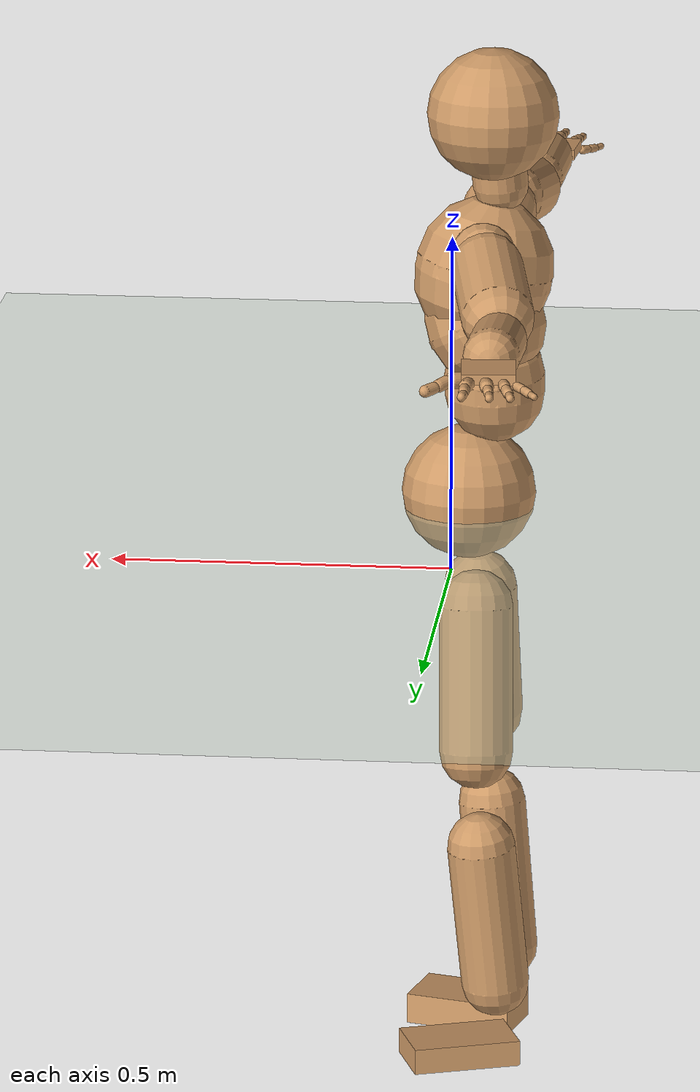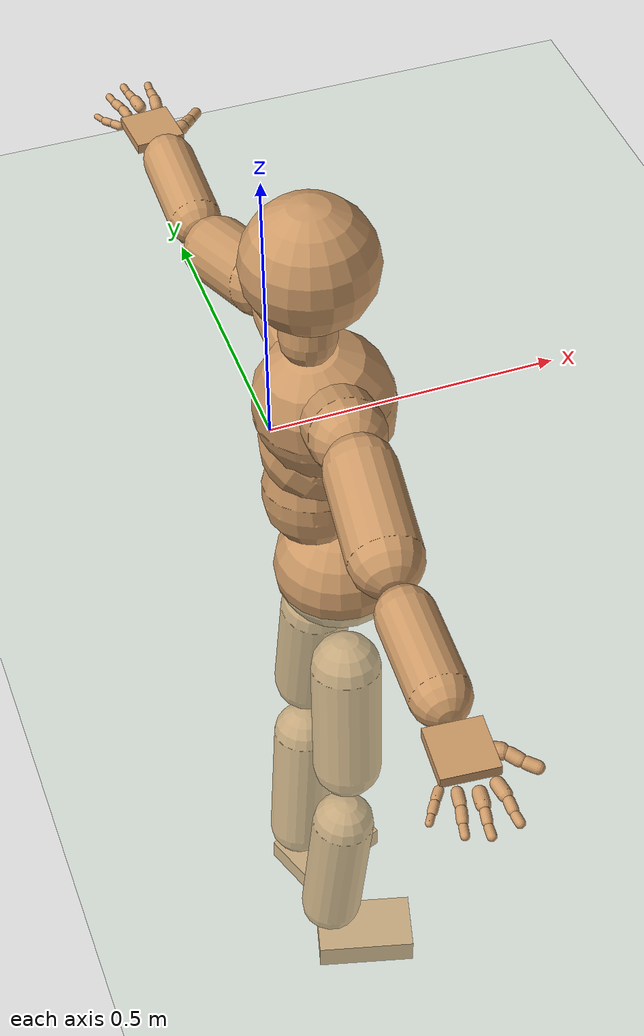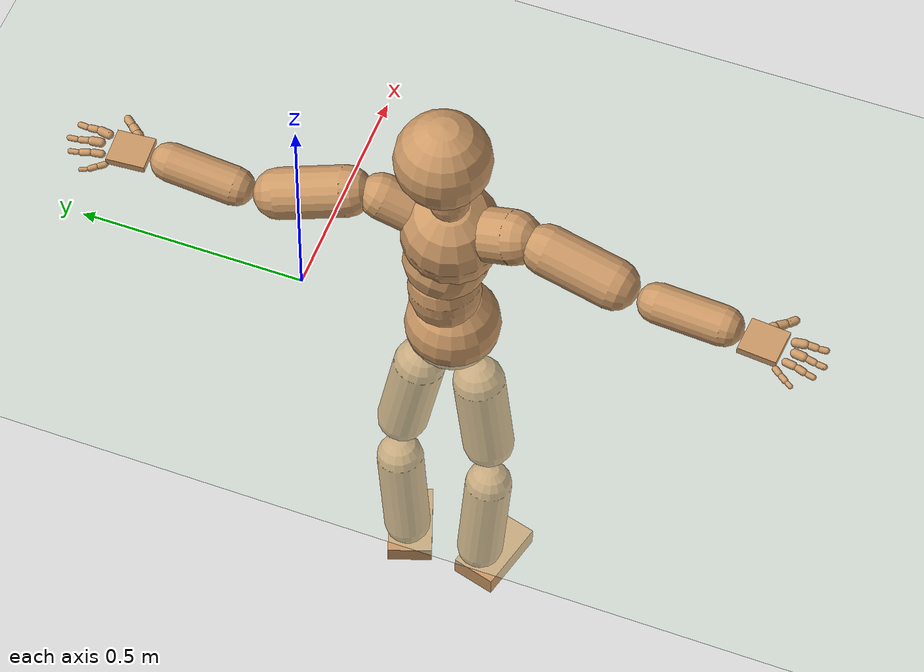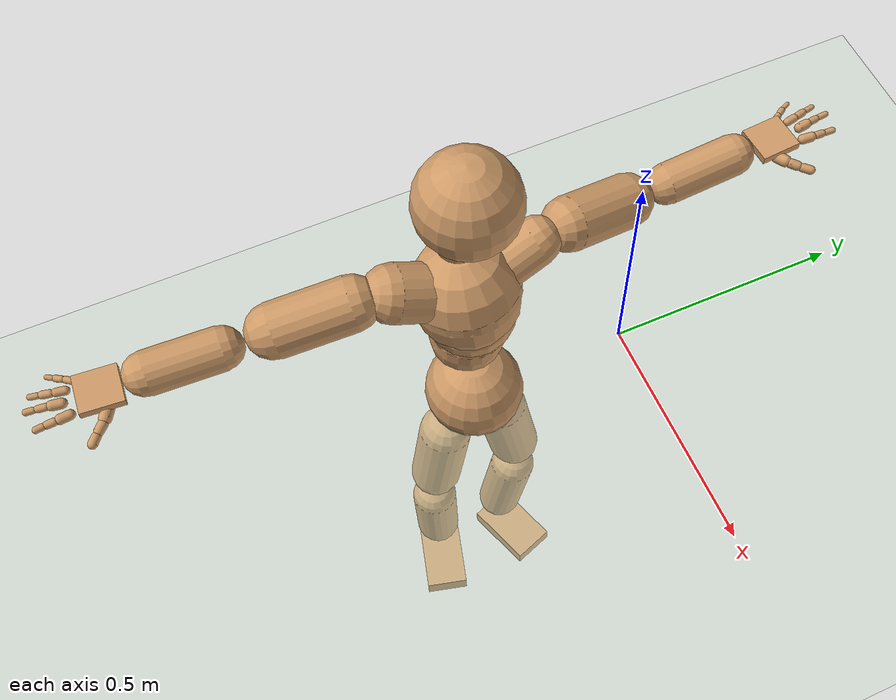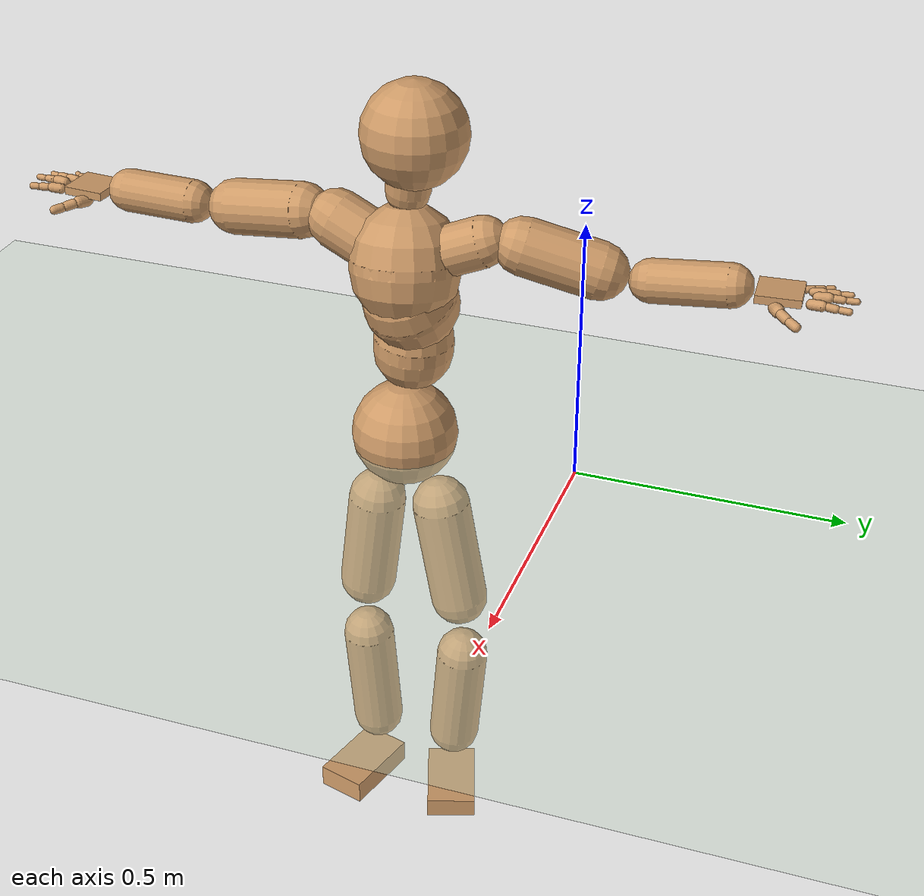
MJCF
<mujoco model="humanoid">
  <compiler coordinate="local" angle="radian"/>
  <default>
    <joint damping="0.0" armature="0.01" stiffness="0.0" limited="true"/>
    <geom conaffinity="1" condim="3" contype="7" margin="0.001" rgba="0.8 0.6 .4 1"/>
  </default>
  <asset>
    <texture type="skybox" builtin="gradient" rgb1=".4 .5 .6" rgb2="0 0 0" width="100" height="100"/>
    <texture builtin="flat" height="1278" mark="cross" markrgb="1 1 1" name="texgeom" random="0.01" rgb1="0.8 0.6 0.4" rgb2="0.8 0.6 0.4" type="cube" width="127"/>
    <texture builtin="checker" height="100" name="texplane" rgb1="0 0 0" rgb2="0.8 0.8 0.8" type="2d" width="100"/>
    <material name="MatPlane" reflectance="0.5" shininess="1" specular="1" texrepeat="60 60" texture="texplane"/>
    <material name="geom" texture="texgeom" texuniform="true"/>
  </asset>
  <worldbody>
    <light cutoff="100" diffuse="1 1 1" dir="-0 0 -1.3" directional="true" exponent="1" pos="0 0 1.3" specular=".1 .1 .1"/>
    <geom conaffinity="1" condim="3" name="floor" pos="0 0 0" rgba="0.8 0.9 0.8 1" size="100 100 .2" type="plane" material="MatPlane"/>
    <body name="Pelvis" pos="0.0012 -0.3354 0.0224">
      <freejoint name="Pelvis"/>
      <geom type="sphere" contype="1" conaffinity="1" density="500" size="0.1015" pos="0.0000 0.0000 0.0000" name="Pelvis"/>
      <body name="L_Hip" pos="-0.0159 0.0541 -0.09">
        <joint name="L_Hip_x" type="hinge" pos="0 0 0" axis="1 0 0" stiffness="800" damping="80" armature="0.02" range="-180.0000 180.0000"/>
        <joint name="L_Hip_y" type="hinge" pos="0 0 0" axis="0 1 0" stiffness="800" damping="80" armature="0.02" range="-180.0000 180.0000"/>
        <joint name="L_Hip_z" type="hinge" pos="0 0 0" axis="0 0 1" stiffness="800" damping="80" armature="0.02" range="-180.0000 180.0000"/>
        <geom type="capsule" contype="1" conaffinity="1" density="500" fromto="-0.0014 0.0123 -0.0727 -0.0057 0.0493 -0.2907" size="0.0562" name="L_Hip"/>
        <body name="L_Knee" pos="-0.0071 0.0617 -0.3634">
          <joint name="L_Knee_x" type="hinge" pos="0 0 0" axis="1 0 0" stiffness="800" damping="80" armature="0.02" range="-180.0000 180.0000"/>
          <joint name="L_Knee_y" type="hinge" pos="0 0 0" axis="0 1 0" stiffness="800" damping="80" armature="0.02" range="-180.0000 180.0000"/>
          <joint name="L_Knee_z" type="hinge" pos="0 0 0" axis="0 0 1" stiffness="800" damping="80" armature="0.02" range="-180.0000 180.0000"/>
          <geom type="capsule" contype="1" conaffinity="1" density="500" fromto="-0.0071 -0.0083 -0.0761 -0.0283 -0.0331 -0.3043" size="0.0516" name="L_Knee"/>
          <body name="L_Ankle" pos="-0.0354 -0.0414 -0.3804">
            <joint name="L_Ankle_x" type="hinge" pos="0 0 0" axis="1 0 0" stiffness="800" damping="80" armature="0.02" range="-180.0000 180.0000"/>
            <joint name="L_Ankle_y" type="hinge" pos="0 0 0" axis="0 1 0" stiffness="800" damping="80" armature="0.02" range="-180.0000 180.0000"/>
            <joint name="L_Ankle_z" type="hinge" pos="0 0 0" axis="0 0 1" stiffness="800" damping="80" armature="0.02" range="-180.0000 180.0000"/>
            <geom type="box" contype="1" conaffinity="1" density="500" pos="0.0605 0.0212 -0.0272" size="0.0825 0.0496 0.0197" quat="0.9859 0.0000 0.0000 0.1675" name="L_Ankle"/>
            <body name="L_Toe" pos="0.121 0.0424 -0.0545">
              <joint name="L_Toe_x" type="hinge" pos="0 0 0" axis="1 0 0" stiffness="500" damping="50" armature="0.02" range="-180.0000 180.0000"/>
              <joint name="L_Toe_y" type="hinge" pos="0 0 0" axis="0 1 0" stiffness="500" damping="50" armature="0.02" range="-180.0000 180.0000"/>
              <joint name="L_Toe_z" type="hinge" pos="0 0 0" axis="0 0 1" stiffness="500" damping="50" armature="0.02" range="-180.0000 180.0000"/>
              <geom type="box" contype="1" conaffinity="1" density="500" pos="0.0000 0.0000 0.0283" size="0.001 0.0023 0.001" quat="0.9851 0.0000 0.0000 0.1722" name="L_Toe"/>
            </body>
          </body>
        </body>
      </body>
      <body name="R_Hip" pos="-0.01 -0.0553 -0.1006">
        <joint name="R_Hip_x" type="hinge" pos="0 0 0" axis="1 0 0" stiffness="800" damping="80" armature="0.02" range="-180.0000 180.0000"/>
        <joint name="R_Hip_y" type="hinge" pos="0 0 0" axis="0 1 0" stiffness="800" damping="80" armature="0.02" range="-180.0000 180.0000"/>
        <joint name="R_Hip_z" type="hinge" pos="0 0 0" axis="0 0 1" stiffness="800" damping="80" armature="0.02" range="-180.0000 180.0000"/>
        <geom type="capsule" contype="1" conaffinity="1" density="500" fromto="-0.0028 -0.0094 -0.0694 -0.0112 -0.0374 -0.2778" size="0.056" name="R_Hip"/>
        <body name="R_Knee" pos="-0.014 -0.0468 -0.3472">
          <joint name="R_Knee_x" type="hinge" pos="0 0 0" axis="1 0 0" stiffness="800" damping="80" armature="0.02" range="-180.0000 180.0000"/>
          <joint name="R_Knee_y" type="hinge" pos="0 0 0" axis="0 1 0" stiffness="800" damping="80" armature="0.02" range="-180.0000 180.0000"/>
          <joint name="R_Knee_z" type="hinge" pos="0 0 0" axis="0 0 1" stiffness="800" damping="80" armature="0.02" range="-180.0000 180.0000"/>
          <geom type="capsule" contype="1" conaffinity="1" density="500" fromto="-0.0069 0.0029 -0.0785 -0.0277 0.0115 -0.3140" size="0.0514" name="R_Knee"/>
          <body name="R_Ankle" pos="-0.0346 0.0144 -0.3925">
            <joint name="R_Ankle_x" type="hinge" pos="0 0 0" axis="1 0 0" stiffness="800" damping="80" armature="0.02" range="-180.0000 180.0000"/>
            <joint name="R_Ankle_y" type="hinge" pos="0 0 0" axis="0 1 0" stiffness="800" damping="80" armature="0.02" range="-180.0000 180.0000"/>
            <joint name="R_Ankle_z" type="hinge" pos="0 0 0" axis="0 0 1" stiffness="800" damping="80" armature="0.02" range="-180.0000 180.0000"/>
            <geom type="box" contype="1" conaffinity="1" density="500" pos="0.0638 -0.0172 -0.0268" size="0.0825 0.0496 0.0236" quat="0.9914 0.0000 0.0000 -0.1311" name="R_Ankle"/>
            <body name="R_Toe" pos="0.1276 -0.0344 -0.0535">
              <joint name="R_Toe_x" type="hinge" pos="0 0 0" axis="1 0 0" stiffness="500" damping="50" armature="0.02" range="-180.0000 180.0000"/>
              <joint name="R_Toe_y" type="hinge" pos="0 0 0" axis="0 1 0" stiffness="500" damping="50" armature="0.02" range="-180.0000 180.0000"/>
              <joint name="R_Toe_z" type="hinge" pos="0 0 0" axis="0 0 1" stiffness="500" damping="50" armature="0.02" range="-180.0000 180.0000"/>
              <geom type="box" contype="1" conaffinity="1" density="500" pos="0.0000 0.0000 0.0239" size="0.001 0.0023 0.001" quat="0.9925 0.0000 0.0000 -0.1220" name="R_Toe"/>
            </body>
          </body>
        </body>
      </body>
      <body name="Torso" pos="-0.0402 -0.0008 0.1024">
        <joint name="Torso_x" type="hinge" pos="0 0 0" axis="1 0 0" stiffness="1000" damping="100" armature="0.02" range="-180.0000 180.0000"/>
        <joint name="Torso_y" type="hinge" pos="0 0 0" axis="0 1 0" stiffness="1000" damping="100" armature="0.02" range="-180.0000 180.0000"/>
        <joint name="Torso_z" type="hinge" pos="0 0 0" axis="0 0 1" stiffness="1000" damping="100" armature="0.02" range="-180.0000 180.0000"/>
        <geom type="capsule" contype="1" conaffinity="1" density="500" fromto="0.0023 0.0072 0.0826 0.0015 0.0048 0.0551" size="0.0756" name="Torso"/>
        <body name="Spine" pos="0.0039 0.012 0.1377">
          <joint name="Spine_x" type="hinge" pos="0 0 0" axis="1 0 0" stiffness="1000" damping="100" armature="0.02" range="-180.0000 180.0000"/>
          <joint name="Spine_y" type="hinge" pos="0 0 0" axis="0 1 0" stiffness="1000" damping="100" armature="0.02" range="-180.0000 180.0000"/>
          <joint name="Spine_z" type="hinge" pos="0 0 0" axis="0 0 1" stiffness="1000" damping="100" armature="0.02" range="-180.0000 180.0000"/>
          <geom type="capsule" contype="1" conaffinity="1" density="500" fromto="0.0152 -0.0063 0.0311 0.0101 -0.0042 0.0207" size="0.0898" name="Spine"/>
          <body name="Chest" pos="0.0253 -0.0106 0.0519">
            <joint name="Chest_x" type="hinge" pos="0 0 0" axis="1 0 0" stiffness="1000" damping="100" armature="0.02" range="-180.0000 180.0000"/>
            <joint name="Chest_y" type="hinge" pos="0 0 0" axis="0 1 0" stiffness="1000" damping="100" armature="0.02" range="-180.0000 180.0000"/>
            <joint name="Chest_z" type="hinge" pos="0 0 0" axis="0 0 1" stiffness="1000" damping="100" armature="0.02" range="-180.0000 180.0000"/>
            <geom type="capsule" contype="1" conaffinity="1" density="500" fromto="-0.0117 -0.0031 0.0592 -0.0078 -0.0021 0.0395" size="0.1037" name="Chest"/>
            <body name="Neck" pos="-0.036 -0.01 0.1544">
              <joint name="Neck_x" type="hinge" pos="0 0 0" axis="1 0 0" stiffness="500" damping="50" armature="0.02" range="-180.0000 180.0000"/>
              <joint name="Neck_y" type="hinge" pos="0 0 0" axis="0 1 0" stiffness="500" damping="50" armature="0.02" range="-180.0000 180.0000"/>
              <joint name="Neck_z" type="hinge" pos="0 0 0" axis="0 0 1" stiffness="500" damping="50" armature="0.02" range="-180.0000 180.0000"/>
              <geom type="capsule" contype="1" conaffinity="1" density="500" fromto="0.0026 0.0044 0.0279 0.0105 0.0176 0.1116" size="0.0417" name="Neck"/>
              <body name="Head" pos="0.0131 0.022 0.1395">
                <joint name="Head_x" type="hinge" pos="0 0 0" axis="1 0 0" stiffness="500" damping="50" armature="0.02" range="-180.0000 180.0000"/>
                <joint name="Head_y" type="hinge" pos="0 0 0" axis="0 1 0" stiffness="500" damping="50" armature="0.02" range="-180.0000 180.0000"/>
                <joint name="Head_z" type="hinge" pos="0 0 0" axis="0 0 1" stiffness="500" damping="50" armature="0.02" range="-180.0000 180.0000"/>
                <geom type="sphere" contype="1" conaffinity="1" density="500" size="0.0986" pos="0.0000 0.0000 0.0000" name="Head"/>
              </body>
            </body>
            <body name="L_Thorax" pos="-0.0102 0.04 0.0703">
              <joint name="L_Thorax_x" type="hinge" pos="0 0 0" axis="1 0 0" stiffness="500" damping="50" armature="0.02" range="-180.0000 180.0000"/>
              <joint name="L_Thorax_y" type="hinge" pos="0 0 0" axis="0 1 0" stiffness="500" damping="50" armature="0.02" range="-180.0000 180.0000"/>
              <joint name="L_Thorax_z" type="hinge" pos="0 0 0" axis="0 0 1" stiffness="500" damping="50" armature="0.02" range="-180.0000 180.0000"/>
              <geom type="capsule" contype="1" conaffinity="1" density="500" fromto="-0.0023 0.0254 0.0103 -0.0094 0.1016 0.0410" size="0.0475" name="L_Thorax"/>
              <body name="L_Shoulder" pos="-0.0117 0.1269 0.0513">
                <joint name="L_Shoulder_x" type="hinge" pos="0 0 0" axis="1 0 0" stiffness="500" damping="50" armature="0.02" range="-180.0000 180.0000"/>
                <joint name="L_Shoulder_y" type="hinge" pos="0 0 0" axis="0 1 0" stiffness="500" damping="50" armature="0.02" range="-180.0000 180.0000"/>
                <joint name="L_Shoulder_z" type="hinge" pos="0 0 0" axis="0 0 1" stiffness="500" damping="50" armature="0.02" range="-180.0000 180.0000"/>
                <geom type="capsule" contype="1" conaffinity="1" density="500" fromto="-0.0087 0.0448 -0.0128 -0.0349 0.1793 -0.0512" size="0.0533" name="L_Shoulder"/>
                <body name="L_Elbow" pos="-0.0437 0.2241 -0.064">
                  <joint name="L_Elbow_x" type="hinge" pos="0 0 0" axis="1 0 0" stiffness="500" damping="50" armature="0.02" range="-720.0000 720.0000"/>
                  <joint name="L_Elbow_y" type="hinge" pos="0 0 0" axis="0 1 0" stiffness="500" damping="50" armature="0.02" range="-720.0000 720.0000"/>
                  <joint name="L_Elbow_z" type="hinge" pos="0 0 0" axis="0 0 1" stiffness="500" damping="50" armature="0.02" range="-720.0000 720.0000"/>
                  <geom type="capsule" contype="1" conaffinity="1" density="500" fromto="0.0001 0.0468 0.0048 0.0004 0.1872 0.0194" size="0.0405" name="L_Elbow"/>
                  <body name="L_Wrist" pos="0.0005 0.234 0.0242">
                    <joint name="L_Wrist_x" type="hinge" pos="0 0 0" axis="1 0 0" stiffness="300" damping="30" armature="0.02" range="-180.0000 180.0000"/>
                    <joint name="L_Wrist_y" type="hinge" pos="0 0 0" axis="0 1 0" stiffness="300" damping="30" armature="0.02" range="-180.0000 180.0000"/>
                    <joint name="L_Wrist_z" type="hinge" pos="0 0 0" axis="0 0 1" stiffness="300" damping="30" armature="0.02" range="-180.0000 180.0000"/>
                    <geom type="box" contype="1" conaffinity="1" density="500" pos="-0.0027 0.0378 -0.0050" size="0.0405 0.0384 0.0077" quat="0.7318 0.0000 0.0000 -0.6816" name="L_Wrist"/>
                    <body name="L_Index1" pos="0.0208 0.0896 -0.0068">
                      <joint name="L_Index1_x" type="hinge" pos="0 0 0" axis="1 0 0" stiffness="100" damping="10" armature="0.02" range="-180.0000 180.0000"/>
                      <joint name="L_Index1_y" type="hinge" pos="0 0 0" axis="0 1 0" stiffness="100" damping="10" armature="0.02" range="-180.0000 180.0000"/>
                      <joint name="L_Index1_z" type="hinge" pos="0 0 0" axis="0 0 1" stiffness="100" damping="10" armature="0.02" range="-180.0000 180.0000"/>
                      <geom type="capsule" contype="1" conaffinity="1" density="500" fromto="0.0007 0.0061 0.0003 0.0028 0.0243 0.0012" size="0.0095" name="L_Index1"/>
                      <body name="L_Index2" pos="0.0035 0.0304 0.0016">
                        <joint name="L_Index2_x" type="hinge" pos="0 0 0" axis="1 0 0" stiffness="100" damping="10" armature="0.02" range="-180.0000 180.0000"/>
                        <joint name="L_Index2_y" type="hinge" pos="0 0 0" axis="0 1 0" stiffness="100" damping="10" armature="0.02" range="-180.0000 180.0000"/>
                        <joint name="L_Index2_z" type="hinge" pos="0 0 0" axis="0 0 1" stiffness="100" damping="10" armature="0.02" range="-180.0000 180.0000"/>
                        <geom type="capsule" contype="1" conaffinity="1" density="500" fromto="-0.0001 0.0043 -0.0005 -0.0003 0.0172 -0.0019" size="0.0075" name="L_Index2"/>
                        <body name="L_Index3" pos="-0.0004 0.0215 -0.0024">
                          <joint name="L_Index3_x" type="hinge" pos="0 0 0" axis="1 0 0" stiffness="100" damping="10" armature="0.02" range="-180.0000 180.0000"/>
                          <joint name="L_Index3_y" type="hinge" pos="0 0 0" axis="0 1 0" stiffness="100" damping="10" armature="0.02" range="-180.0000 180.0000"/>
                          <joint name="L_Index3_z" type="hinge" pos="0 0 0" axis="0 0 1" stiffness="100" damping="10" armature="0.02" range="-180.0000 180.0000"/>
                          <geom type="capsule" contype="1" conaffinity="1" density="500" fromto="0.0003 0.0047 -0.0001 0.0013 0.0188 -0.0003" size="0.0063" name="L_Index3"/>
                        </body>
                      </body>
                    </body>
                    <body name="L_Middle1" pos="-0.0034 0.0968 -0.0044">
                      <joint name="L_Middle1_x" type="hinge" pos="0 0 0" axis="1 0 0" stiffness="100" damping="10" armature="0.02" range="-180.0000 180.0000"/>
                      <joint name="L_Middle1_y" type="hinge" pos="0 0 0" axis="0 1 0" stiffness="100" damping="10" armature="0.02" range="-180.0000 180.0000"/>
                      <joint name="L_Middle1_z" type="hinge" pos="0 0 0" axis="0 0 1" stiffness="100" damping="10" armature="0.02" range="-180.0000 180.0000"/>
                      <geom type="capsule" contype="1" conaffinity="1" density="500" fromto="-0.0009 0.0058 0.0001 -0.0035 0.0234 0.0004" size="0.0096" name="L_Middle1"/>
                      <body name="L_Middle2" pos="-0.0043 0.0292 0.0005">
                        <joint name="L_Middle2_x" type="hinge" pos="0 0 0" axis="1 0 0" stiffness="100" damping="10" armature="0.02" range="-180.0000 180.0000"/>
                        <joint name="L_Middle2_y" type="hinge" pos="0 0 0" axis="0 1 0" stiffness="100" damping="10" armature="0.02" range="-180.0000 180.0000"/>
                        <joint name="L_Middle2_z" type="hinge" pos="0 0 0" axis="0 0 1" stiffness="100" damping="10" armature="0.02" range="-180.0000 180.0000"/>
                        <geom type="capsule" contype="1" conaffinity="1" density="500" fromto="-0.0009 0.0044 -0.0005 -0.0034 0.0177 -0.0018" size="0.007" name="L_Middle2"/>
                        <body name="L_Middle3" pos="-0.0043 0.0222 -0.0023">
                          <joint name="L_Middle3_x" type="hinge" pos="0 0 0" axis="1 0 0" stiffness="100" damping="10" armature="0.02" range="-180.0000 180.0000"/>
                          <joint name="L_Middle3_y" type="hinge" pos="0 0 0" axis="0 1 0" stiffness="100" damping="10" armature="0.02" range="-180.0000 180.0000"/>
                          <joint name="L_Middle3_z" type="hinge" pos="0 0 0" axis="0 0 1" stiffness="100" damping="10" armature="0.02" range="-180.0000 180.0000"/>
                          <geom type="capsule" contype="1" conaffinity="1" density="500" fromto="-0.0005 0.0048 -0.0001 -0.0018 0.0193 -0.0002" size="0.006" name="L_Middle3"/>
                        </body>
                      </body>
                    </body>
                    <body name="L_Pinky1" pos="-0.0436 0.0734 -0.0135">
                      <joint name="L_Pinky1_x" type="hinge" pos="0 0 0" axis="1 0 0" stiffness="100" damping="10" armature="0.02" range="-180.0000 180.0000"/>
                      <joint name="L_Pinky1_y" type="hinge" pos="0 0 0" axis="0 1 0" stiffness="100" damping="10" armature="0.02" range="-180.0000 180.0000"/>
                      <joint name="L_Pinky1_z" type="hinge" pos="0 0 0" axis="0 0 1" stiffness="100" damping="10" armature="0.02" range="-180.0000 180.0000"/>
                      <geom type="capsule" contype="1" conaffinity="1" density="500" fromto="-0.0023 0.0031 -0.0003 -0.0094 0.0126 -0.0011" size="0.0067" name="L_Pinky1"/>
                      <body name="L_Pinky2" pos="-0.0117 0.0157 -0.0014">
                        <joint name="L_Pinky2_x" type="hinge" pos="0 0 0" axis="1 0 0" stiffness="100" damping="10" armature="0.02" range="-180.0000 180.0000"/>
                        <joint name="L_Pinky2_y" type="hinge" pos="0 0 0" axis="0 1 0" stiffness="100" damping="10" armature="0.02" range="-180.0000 180.0000"/>
                        <joint name="L_Pinky2_z" type="hinge" pos="0 0 0" axis="0 0 1" stiffness="100" damping="10" armature="0.02" range="-180.0000 180.0000"/>
                        <geom type="capsule" contype="1" conaffinity="1" density="500" fromto="-0.0021 0.0031 -0.0004 -0.0085 0.0124 -0.0015" size="0.0064" name="L_Pinky2"/>
                        <body name="L_Pinky3" pos="-0.0106 0.0154 -0.0018">
                          <joint name="L_Pinky3_x" type="hinge" pos="0 0 0" axis="1 0 0" stiffness="100" damping="10" armature="0.02" range="-180.0000 180.0000"/>
                          <joint name="L_Pinky3_y" type="hinge" pos="0 0 0" axis="0 1 0" stiffness="100" damping="10" armature="0.02" range="-180.0000 180.0000"/>
                          <joint name="L_Pinky3_z" type="hinge" pos="0 0 0" axis="0 0 1" stiffness="100" damping="10" armature="0.02" range="-180.0000 180.0000"/>
                          <geom type="capsule" contype="1" conaffinity="1" density="500" fromto="-0.0017 0.0035 0.0000 -0.0069 0.0140 0.0001" size="0.0047" name="L_Pinky3"/>
                        </body>
                      </body>
                    </body>
                    <body name="L_Ring1" pos="-0.0272 0.0857 -0.0077">
                      <joint name="L_Ring1_x" type="hinge" pos="0 0 0" axis="1 0 0" stiffness="100" damping="10" armature="0.02" range="-180.0000 180.0000"/>
                      <joint name="L_Ring1_y" type="hinge" pos="0 0 0" axis="0 1 0" stiffness="100" damping="10" armature="0.02" range="-180.0000 180.0000"/>
                      <joint name="L_Ring1_z" type="hinge" pos="0 0 0" axis="0 0 1" stiffness="100" damping="10" armature="0.02" range="-180.0000 180.0000"/>
                      <geom type="capsule" contype="1" conaffinity="1" density="500" fromto="-0.0010 0.0054 0.0001 -0.0039 0.0216 0.0004" size="0.008" name="L_Ring1"/>
                      <body name="L_Ring2" pos="-0.0049 0.027 0.0005">
                        <joint name="L_Ring2_x" type="hinge" pos="0 0 0" axis="1 0 0" stiffness="100" damping="10" armature="0.02" range="-180.0000 180.0000"/>
                        <joint name="L_Ring2_y" type="hinge" pos="0 0 0" axis="0 1 0" stiffness="100" damping="10" armature="0.02" range="-180.0000 180.0000"/>
                        <joint name="L_Ring2_z" type="hinge" pos="0 0 0" axis="0 0 1" stiffness="100" damping="10" armature="0.02" range="-180.0000 180.0000"/>
                        <geom type="capsule" contype="1" conaffinity="1" density="500" fromto="-0.0013 0.0044 -0.0005 -0.0051 0.0177 -0.0019" size="0.0075" name="L_Ring2"/>
                        <body name="L_Ring3" pos="-0.0064 0.0221 -0.0024">
                          <joint name="L_Ring3_x" type="hinge" pos="0 0 0" axis="1 0 0" stiffness="100" damping="10" armature="0.02" range="-180.0000 180.0000"/>
                          <joint name="L_Ring3_y" type="hinge" pos="0 0 0" axis="0 1 0" stiffness="100" damping="10" armature="0.02" range="-180.0000 180.0000"/>
                          <joint name="L_Ring3_z" type="hinge" pos="0 0 0" axis="0 0 1" stiffness="100" damping="10" armature="0.02" range="-180.0000 180.0000"/>
                          <geom type="capsule" contype="1" conaffinity="1" density="500" fromto="-0.0009 0.0048 -0.0001 -0.0035 0.0193 -0.0003" size="0.0057" name="L_Ring3"/>
                        </body>
                      </body>
                    </body>
                    <body name="L_Thumb1" pos="0.0266 0.033 -0.018">
                      <joint name="L_Thumb1_x" type="hinge" pos="0 0 0" axis="1 0 0" stiffness="100" damping="10" armature="0.02" range="-180.0000 180.0000"/>
                      <joint name="L_Thumb1_y" type="hinge" pos="0 0 0" axis="0 1 0" stiffness="100" damping="10" armature="0.02" range="-180.0000 180.0000"/>
                      <joint name="L_Thumb1_z" type="hinge" pos="0 0 0" axis="0 0 1" stiffness="100" damping="10" armature="0.02" range="-180.0000 180.0000"/>
                      <geom type="capsule" contype="1" conaffinity="1" density="500" fromto="0.0051 0.0029 0.0004 0.0203 0.0116 0.0014" size="0.0118" name="L_Thumb1"/>
                      <body name="L_Thumb2" pos="0.0254 0.0145 0.0018">
                        <joint name="L_Thumb2_x" type="hinge" pos="0 0 0" axis="1 0 0" stiffness="100" damping="10" armature="0.02" range="-180.0000 180.0000"/>
                        <joint name="L_Thumb2_y" type="hinge" pos="0 0 0" axis="0 1 0" stiffness="100" damping="10" armature="0.02" range="-180.0000 180.0000"/>
                        <joint name="L_Thumb2_z" type="hinge" pos="0 0 0" axis="0 0 1" stiffness="100" damping="10" armature="0.02" range="-180.0000 180.0000"/>
                        <geom type="capsule" contype="1" conaffinity="1" density="500" fromto="0.0032 0.0036 -0.0009 0.0127 0.0145 -0.0036" size="0.0094" name="L_Thumb2"/>
                        <body name="L_Thumb3" pos="0.0159 0.0181 -0.0045">
                          <joint name="L_Thumb3_x" type="hinge" pos="0 0 0" axis="1 0 0" stiffness="100" damping="10" armature="0.02" range="-180.0000 180.0000"/>
                          <joint name="L_Thumb3_y" type="hinge" pos="0 0 0" axis="0 1 0" stiffness="100" damping="10" armature="0.02" range="-180.0000 180.0000"/>
                          <joint name="L_Thumb3_z" type="hinge" pos="0 0 0" axis="0 0 1" stiffness="100" damping="10" armature="0.02" range="-180.0000 180.0000"/>
                          <geom type="capsule" contype="1" conaffinity="1" density="500" fromto="0.0036 0.0040 -0.0005 0.0143 0.0161 -0.0020" size="0.0087" name="L_Thumb3"/>
                        </body>
                      </body>
                    </body>
                  </body>
                </body>
              </body>
            </body>
            <body name="R_Thorax" pos="-0.0122 -0.0454 0.0712">
              <joint name="R_Thorax_x" type="hinge" pos="0 0 0" axis="1 0 0" stiffness="500" damping="50" armature="0.02" range="-180.0000 180.0000"/>
              <joint name="R_Thorax_y" type="hinge" pos="0 0 0" axis="0 1 0" stiffness="500" damping="50" armature="0.02" range="-180.0000 180.0000"/>
              <joint name="R_Thorax_z" type="hinge" pos="0 0 0" axis="0 0 1" stiffness="500" damping="50" armature="0.02" range="-180.0000 180.0000"/>
              <geom type="capsule" contype="1" conaffinity="1" density="500" fromto="-0.0026 -0.0233 0.0099 -0.0104 -0.0933 0.0396" size="0.0561" name="R_Thorax"/>
              <body name="R_Shoulder" pos="-0.0129 -0.1166 0.0494">
                <joint name="R_Shoulder_x" type="hinge" pos="0 0 0" axis="1 0 0" stiffness="500" damping="50" armature="0.02" range="-180.0000 180.0000"/>
                <joint name="R_Shoulder_y" type="hinge" pos="0 0 0" axis="0 1 0" stiffness="500" damping="50" armature="0.02" range="-180.0000 180.0000"/>
                <joint name="R_Shoulder_z" type="hinge" pos="0 0 0" axis="0 0 1" stiffness="500" damping="50" armature="0.02" range="-180.0000 180.0000"/>
                <geom type="capsule" contype="1" conaffinity="1" density="500" fromto="-0.0056 -0.0479 -0.0070 -0.0226 -0.1916 -0.0281" size="0.0526" name="R_Shoulder"/>
                <body name="R_Elbow" pos="-0.0282 -0.2395 -0.0351">
                  <joint name="R_Elbow_x" type="hinge" pos="0 0 0" axis="1 0 0" stiffness="500" damping="50" armature="0.02" range="-720.0000 720.0000"/>
                  <joint name="R_Elbow_y" type="hinge" pos="0 0 0" axis="0 1 0" stiffness="500" damping="50" armature="0.02" range="-720.0000 720.0000"/>
                  <joint name="R_Elbow_z" type="hinge" pos="0 0 0" axis="0 0 1" stiffness="500" damping="50" armature="0.02" range="-720.0000 720.0000"/>
                  <geom type="capsule" contype="1" conaffinity="1" density="500" fromto="-0.0021 -0.0455 -0.0000 -0.0086 -0.1822 -0.0002" size="0.0414" name="R_Elbow"/>
                  <body name="R_Wrist" pos="-0.0107 -0.2277 -0.0002">
                    <joint name="R_Wrist_x" type="hinge" pos="0 0 0" axis="1 0 0" stiffness="300" damping="30" armature="0.02" range="-180.0000 180.0000"/>
                    <joint name="R_Wrist_y" type="hinge" pos="0 0 0" axis="0 1 0" stiffness="300" damping="30" armature="0.02" range="-180.0000 180.0000"/>
                    <joint name="R_Wrist_z" type="hinge" pos="0 0 0" axis="0 0 1" stiffness="300" damping="30" armature="0.02" range="-180.0000 180.0000"/>
                    <geom type="box" contype="1" conaffinity="1" density="500" pos="-0.0032 -0.0377 -0.0069" size="0.0405 0.0391 0.0079" quat="0.7365 0.0000 0.0000 0.6764" name="R_Wrist"/>
                    <body name="R_Index1" pos="0.0197 -0.0893 -0.0105">
                      <joint name="R_Index1_x" type="hinge" pos="0 0 0" axis="1 0 0" stiffness="100" damping="10" armature="0.02" range="-180.0000 180.0000"/>
                      <joint name="R_Index1_y" type="hinge" pos="0 0 0" axis="0 1 0" stiffness="100" damping="10" armature="0.02" range="-180.0000 180.0000"/>
                      <joint name="R_Index1_z" type="hinge" pos="0 0 0" axis="0 0 1" stiffness="100" damping="10" armature="0.02" range="-180.0000 180.0000"/>
                      <geom type="capsule" contype="1" conaffinity="1" density="500" fromto="0.0007 -0.0061 0.0003 0.0028 -0.0243 0.0012" size="0.0095" name="R_Index1"/>
                      <body name="R_Index2" pos="0.0035 -0.0304 0.0016">
                        <joint name="R_Index2_x" type="hinge" pos="0 0 0" axis="1 0 0" stiffness="100" damping="10" armature="0.02" range="-180.0000 180.0000"/>
                        <joint name="R_Index2_y" type="hinge" pos="0 0 0" axis="0 1 0" stiffness="100" damping="10" armature="0.02" range="-180.0000 180.0000"/>
                        <joint name="R_Index2_z" type="hinge" pos="0 0 0" axis="0 0 1" stiffness="100" damping="10" armature="0.02" range="-180.0000 180.0000"/>
                        <geom type="capsule" contype="1" conaffinity="1" density="500" fromto="-0.0001 -0.0043 -0.0005 -0.0003 -0.0172 -0.0019" size="0.0075" name="R_Index2"/>
                        <body name="R_Index3" pos="-0.0004 -0.0215 -0.0024">
                          <joint name="R_Index3_x" type="hinge" pos="0 0 0" axis="1 0 0" stiffness="100" damping="10" armature="0.02" range="-180.0000 180.0000"/>
                          <joint name="R_Index3_y" type="hinge" pos="0 0 0" axis="0 1 0" stiffness="100" damping="10" armature="0.02" range="-180.0000 180.0000"/>
                          <joint name="R_Index3_z" type="hinge" pos="0 0 0" axis="0 0 1" stiffness="100" damping="10" armature="0.02" range="-180.0000 180.0000"/>
                          <geom type="capsule" contype="1" conaffinity="1" density="500" fromto="0.0003 -0.0039 -0.0001 0.0013 -0.0156 -0.0003" size="0.0066" name="R_Index3"/>
                        </body>
                      </body>
                    </body>
                    <body name="R_Middle1" pos="-0.0045 -0.0964 -0.0081">
                      <joint name="R_Middle1_x" type="hinge" pos="0 0 0" axis="1 0 0" stiffness="100" damping="10" armature="0.02" range="-180.0000 180.0000"/>
                      <joint name="R_Middle1_y" type="hinge" pos="0 0 0" axis="0 1 0" stiffness="100" damping="10" armature="0.02" range="-180.0000 180.0000"/>
                      <joint name="R_Middle1_z" type="hinge" pos="0 0 0" axis="0 0 1" stiffness="100" damping="10" armature="0.02" range="-180.0000 180.0000"/>
                      <geom type="capsule" contype="1" conaffinity="1" density="500" fromto="-0.0009 -0.0058 0.0001 -0.0035 -0.0234 0.0004" size="0.0096" name="R_Middle1"/>
                      <body name="R_Middle2" pos="-0.0043 -0.0292 0.0005">
                        <joint name="R_Middle2_x" type="hinge" pos="0 0 0" axis="1 0 0" stiffness="100" damping="10" armature="0.02" range="-180.0000 180.0000"/>
                        <joint name="R_Middle2_y" type="hinge" pos="0 0 0" axis="0 1 0" stiffness="100" damping="10" armature="0.02" range="-180.0000 180.0000"/>
                        <joint name="R_Middle2_z" type="hinge" pos="0 0 0" axis="0 0 1" stiffness="100" damping="10" armature="0.02" range="-180.0000 180.0000"/>
                        <geom type="capsule" contype="1" conaffinity="1" density="500" fromto="-0.0009 -0.0044 -0.0005 -0.0034 -0.0177 -0.0018" size="0.007" name="R_Middle2"/>
                        <body name="R_Middle3" pos="-0.0043 -0.0222 -0.0023">
                          <joint name="R_Middle3_x" type="hinge" pos="0 0 0" axis="1 0 0" stiffness="100" damping="10" armature="0.02" range="-180.0000 180.0000"/>
                          <joint name="R_Middle3_y" type="hinge" pos="0 0 0" axis="0 1 0" stiffness="100" damping="10" armature="0.02" range="-180.0000 180.0000"/>
                          <joint name="R_Middle3_z" type="hinge" pos="0 0 0" axis="0 0 1" stiffness="100" damping="10" armature="0.02" range="-180.0000 180.0000"/>
                          <geom type="capsule" contype="1" conaffinity="1" density="500" fromto="-0.0005 -0.0040 -0.0001 -0.0018 -0.0161 -0.0002" size="0.0063" name="R_Middle3"/>
                        </body>
                      </body>
                    </body>
                    <body name="R_Pinky1" pos="-0.0447 -0.073 -0.0171">
                      <joint name="R_Pinky1_x" type="hinge" pos="0 0 0" axis="1 0 0" stiffness="100" damping="10" armature="0.02" range="-180.0000 180.0000"/>
                      <joint name="R_Pinky1_y" type="hinge" pos="0 0 0" axis="0 1 0" stiffness="100" damping="10" armature="0.02" range="-180.0000 180.0000"/>
                      <joint name="R_Pinky1_z" type="hinge" pos="0 0 0" axis="0 0 1" stiffness="100" damping="10" armature="0.02" range="-180.0000 180.0000"/>
                      <geom type="capsule" contype="1" conaffinity="1" density="500" fromto="-0.0023 -0.0031 -0.0003 -0.0094 -0.0126 -0.0011" size="0.0067" name="R_Pinky1"/>
                      <body name="R_Pinky2" pos="-0.0117 -0.0157 -0.0014">
                        <joint name="R_Pinky2_x" type="hinge" pos="0 0 0" axis="1 0 0" stiffness="100" damping="10" armature="0.02" range="-180.0000 180.0000"/>
                        <joint name="R_Pinky2_y" type="hinge" pos="0 0 0" axis="0 1 0" stiffness="100" damping="10" armature="0.02" range="-180.0000 180.0000"/>
                        <joint name="R_Pinky2_z" type="hinge" pos="0 0 0" axis="0 0 1" stiffness="100" damping="10" armature="0.02" range="-180.0000 180.0000"/>
                        <geom type="capsule" contype="1" conaffinity="1" density="500" fromto="-0.0021 -0.0031 -0.0004 -0.0085 -0.0124 -0.0015" size="0.0064" name="R_Pinky2"/>
                        <body name="R_Pinky3" pos="-0.0106 -0.0154 -0.0018">
                          <joint name="R_Pinky3_x" type="hinge" pos="0 0 0" axis="1 0 0" stiffness="100" damping="10" armature="0.02" range="-180.0000 180.0000"/>
                          <joint name="R_Pinky3_y" type="hinge" pos="0 0 0" axis="0 1 0" stiffness="100" damping="10" armature="0.02" range="-180.0000 180.0000"/>
                          <joint name="R_Pinky3_z" type="hinge" pos="0 0 0" axis="0 0 1" stiffness="100" damping="10" armature="0.02" range="-180.0000 180.0000"/>
                          <geom type="capsule" contype="1" conaffinity="1" density="500" fromto="-0.0017 -0.0027 0.0000 -0.0069 -0.0108 0.0001" size="0.005" name="R_Pinky3"/>
                        </body>
                      </body>
                    </body>
                    <body name="R_Ring1" pos="-0.0282 -0.0853 -0.0114">
                      <joint name="R_Ring1_x" type="hinge" pos="0 0 0" axis="1 0 0" stiffness="100" damping="10" armature="0.02" range="-180.0000 180.0000"/>
                      <joint name="R_Ring1_y" type="hinge" pos="0 0 0" axis="0 1 0" stiffness="100" damping="10" armature="0.02" range="-180.0000 180.0000"/>
                      <joint name="R_Ring1_z" type="hinge" pos="0 0 0" axis="0 0 1" stiffness="100" damping="10" armature="0.02" range="-180.0000 180.0000"/>
                      <geom type="capsule" contype="1" conaffinity="1" density="500" fromto="-0.0010 -0.0054 0.0001 -0.0039 -0.0216 0.0004" size="0.0081" name="R_Ring1"/>
                      <body name="R_Ring2" pos="-0.0049 -0.027 0.0005">
                        <joint name="R_Ring2_x" type="hinge" pos="0 0 0" axis="1 0 0" stiffness="100" damping="10" armature="0.02" range="-180.0000 180.0000"/>
                        <joint name="R_Ring2_y" type="hinge" pos="0 0 0" axis="0 1 0" stiffness="100" damping="10" armature="0.02" range="-180.0000 180.0000"/>
                        <joint name="R_Ring2_z" type="hinge" pos="0 0 0" axis="0 0 1" stiffness="100" damping="10" armature="0.02" range="-180.0000 180.0000"/>
                        <geom type="capsule" contype="1" conaffinity="1" density="500" fromto="-0.0013 -0.0044 -0.0005 -0.0051 -0.0177 -0.0019" size="0.0075" name="R_Ring2"/>
                        <body name="R_Ring3" pos="-0.0064 -0.0221 -0.0024">
                          <joint name="R_Ring3_x" type="hinge" pos="0 0 0" axis="1 0 0" stiffness="100" damping="10" armature="0.02" range="-180.0000 180.0000"/>
                          <joint name="R_Ring3_y" type="hinge" pos="0 0 0" axis="0 1 0" stiffness="100" damping="10" armature="0.02" range="-180.0000 180.0000"/>
                          <joint name="R_Ring3_z" type="hinge" pos="0 0 0" axis="0 0 1" stiffness="100" damping="10" armature="0.02" range="-180.0000 180.0000"/>
                          <geom type="capsule" contype="1" conaffinity="1" density="500" fromto="-0.0009 -0.0040 -0.0001 -0.0035 -0.0161 -0.0003" size="0.0059" name="R_Ring3"/>
                        </body>
                      </body>
                    </body>
                    <body name="R_Thumb1" pos="0.0256 -0.0326 -0.0217">
                      <joint name="R_Thumb1_x" type="hinge" pos="0 0 0" axis="1 0 0" stiffness="100" damping="10" armature="0.02" range="-180.0000 180.0000"/>
                      <joint name="R_Thumb1_y" type="hinge" pos="0 0 0" axis="0 1 0" stiffness="100" damping="10" armature="0.02" range="-180.0000 180.0000"/>
                      <joint name="R_Thumb1_z" type="hinge" pos="0 0 0" axis="0 0 1" stiffness="100" damping="10" armature="0.02" range="-180.0000 180.0000"/>
                      <geom type="capsule" contype="1" conaffinity="1" density="500" fromto="0.0051 -0.0029 0.0004 0.0203 -0.0116 0.0014" size="0.0118" name="R_Thumb1"/>
                      <body name="R_Thumb2" pos="0.0254 -0.0145 0.0018">
                        <joint name="R_Thumb2_x" type="hinge" pos="0 0 0" axis="1 0 0" stiffness="100" damping="10" armature="0.02" range="-180.0000 180.0000"/>
                        <joint name="R_Thumb2_y" type="hinge" pos="0 0 0" axis="0 1 0" stiffness="100" damping="10" armature="0.02" range="-180.0000 180.0000"/>
                        <joint name="R_Thumb2_z" type="hinge" pos="0 0 0" axis="0 0 1" stiffness="100" damping="10" armature="0.02" range="-180.0000 180.0000"/>
                        <geom type="capsule" contype="1" conaffinity="1" density="500" fromto="0.0032 -0.0036 -0.0009 0.0127 -0.0145 -0.0036" size="0.0094" name="R_Thumb2"/>
                        <body name="R_Thumb3" pos="0.0159 -0.0181 -0.0045">
                          <joint name="R_Thumb3_x" type="hinge" pos="0 0 0" axis="1 0 0" stiffness="100" damping="10" armature="0.02" range="-180.0000 180.0000"/>
                          <joint name="R_Thumb3_y" type="hinge" pos="0 0 0" axis="0 1 0" stiffness="100" damping="10" armature="0.02" range="-180.0000 180.0000"/>
                          <joint name="R_Thumb3_z" type="hinge" pos="0 0 0" axis="0 0 1" stiffness="100" damping="10" armature="0.02" range="-180.0000 180.0000"/>
                          <geom type="capsule" contype="1" conaffinity="1" density="500" fromto="0.0036 -0.0032 -0.0005 0.0143 -0.0129 -0.0020" size="0.0089" name="R_Thumb3"/>
                        </body>
                      </body>
                    </body>
                  </body>
                </body>
              </body>
            </body>
          </body>
        </body>
      </body>
    </body>
  </worldbody>
  <actuator>
    <motor name="L_Hip_x" joint="L_Hip_x" gear="500"/>
    <motor name="L_Hip_y" joint="L_Hip_y" gear="500"/>
    <motor name="L_Hip_z" joint="L_Hip_z" gear="500"/>
    <motor name="L_Knee_x" joint="L_Knee_x" gear="500"/>
    <motor name="L_Knee_y" joint="L_Knee_y" gear="500"/>
    <motor name="L_Knee_z" joint="L_Knee_z" gear="500"/>
    <motor name="L_Ankle_x" joint="L_Ankle_x" gear="500"/>
    <motor name="L_Ankle_y" joint="L_Ankle_y" gear="500"/>
    <motor name="L_Ankle_z" joint="L_Ankle_z" gear="500"/>
    <motor name="L_Toe_x" joint="L_Toe_x" gear="500"/>
    <motor name="L_Toe_y" joint="L_Toe_y" gear="500"/>
    <motor name="L_Toe_z" joint="L_Toe_z" gear="500"/>
    <motor name="R_Hip_x" joint="R_Hip_x" gear="500"/>
    <motor name="R_Hip_y" joint="R_Hip_y" gear="500"/>
    <motor name="R_Hip_z" joint="R_Hip_z" gear="500"/>
    <motor name="R_Knee_x" joint="R_Knee_x" gear="500"/>
    <motor name="R_Knee_y" joint="R_Knee_y" gear="500"/>
    <motor name="R_Knee_z" joint="R_Knee_z" gear="500"/>
    <motor name="R_Ankle_x" joint="R_Ankle_x" gear="500"/>
    <motor name="R_Ankle_y" joint="R_Ankle_y" gear="500"/>
    <motor name="R_Ankle_z" joint="R_Ankle_z" gear="500"/>
    <motor name="R_Toe_x" joint="R_Toe_x" gear="500"/>
    <motor name="R_Toe_y" joint="R_Toe_y" gear="500"/>
    <motor name="R_Toe_z" joint="R_Toe_z" gear="500"/>
    <motor name="Torso_x" joint="Torso_x" gear="500"/>
    <motor name="Torso_y" joint="Torso_y" gear="500"/>
    <motor name="Torso_z" joint="Torso_z" gear="500"/>
    <motor name="Spine_x" joint="Spine_x" gear="500"/>
    <motor name="Spine_y" joint="Spine_y" gear="500"/>
    <motor name="Spine_z" joint="Spine_z" gear="500"/>
    <motor name="Chest_x" joint="Chest_x" gear="500"/>
    <motor name="Chest_y" joint="Chest_y" gear="500"/>
    <motor name="Chest_z" joint="Chest_z" gear="500"/>
    <motor name="Neck_x" joint="Neck_x" gear="500"/>
    <motor name="Neck_y" joint="Neck_y" gear="500"/>
    <motor name="Neck_z" joint="Neck_z" gear="500"/>
    <motor name="Head_x" joint="Head_x" gear="500"/>
    <motor name="Head_y" joint="Head_y" gear="500"/>
    <motor name="Head_z" joint="Head_z" gear="500"/>
    <motor name="L_Thorax_x" joint="L_Thorax_x" gear="500"/>
    <motor name="L_Thorax_y" joint="L_Thorax_y" gear="500"/>
    <motor name="L_Thorax_z" joint="L_Thorax_z" gear="500"/>
    <motor name="L_Shoulder_x" joint="L_Shoulder_x" gear="500"/>
    <motor name="L_Shoulder_y" joint="L_Shoulder_y" gear="500"/>
    <motor name="L_Shoulder_z" joint="L_Shoulder_z" gear="500"/>
    <motor name="L_Elbow_x" joint="L_Elbow_x" gear="500"/>
    <motor name="L_Elbow_y" joint="L_Elbow_y" gear="500"/>
    <motor name="L_Elbow_z" joint="L_Elbow_z" gear="500"/>
    <motor name="L_Wrist_x" joint="L_Wrist_x" gear="500"/>
    <motor name="L_Wrist_y" joint="L_Wrist_y" gear="500"/>
    <motor name="L_Wrist_z" joint="L_Wrist_z" gear="500"/>
    <motor name="L_Index1_x" joint="L_Index1_x" gear="500"/>
    <motor name="L_Index1_y" joint="L_Index1_y" gear="500"/>
    <motor name="L_Index1_z" joint="L_Index1_z" gear="500"/>
    <motor name="L_Index2_x" joint="L_Index2_x" gear="500"/>
    <motor name="L_Index2_y" joint="L_Index2_y" gear="500"/>
    <motor name="L_Index2_z" joint="L_Index2_z" gear="500"/>
    <motor name="L_Index3_x" joint="L_Index3_x" gear="500"/>
    <motor name="L_Index3_y" joint="L_Index3_y" gear="500"/>
    <motor name="L_Index3_z" joint="L_Index3_z" gear="500"/>
    <motor name="L_Middle1_x" joint="L_Middle1_x" gear="500"/>
    <motor name="L_Middle1_y" joint="L_Middle1_y" gear="500"/>
    <motor name="L_Middle1_z" joint="L_Middle1_z" gear="500"/>
    <motor name="L_Middle2_x" joint="L_Middle2_x" gear="500"/>
    <motor name="L_Middle2_y" joint="L_Middle2_y" gear="500"/>
    <motor name="L_Middle2_z" joint="L_Middle2_z" gear="500"/>
    <motor name="L_Middle3_x" joint="L_Middle3_x" gear="500"/>
    <motor name="L_Middle3_y" joint="L_Middle3_y" gear="500"/>
    <motor name="L_Middle3_z" joint="L_Middle3_z" gear="500"/>
    <motor name="L_Pinky1_x" joint="L_Pinky1_x" gear="500"/>
    <motor name="L_Pinky1_y" joint="L_Pinky1_y" gear="500"/>
    <motor name="L_Pinky1_z" joint="L_Pinky1_z" gear="500"/>
    <motor name="L_Pinky2_x" joint="L_Pinky2_x" gear="500"/>
    <motor name="L_Pinky2_y" joint="L_Pinky2_y" gear="500"/>
    <motor name="L_Pinky2_z" joint="L_Pinky2_z" gear="500"/>
    <motor name="L_Pinky3_x" joint="L_Pinky3_x" gear="500"/>
    <motor name="L_Pinky3_y" joint="L_Pinky3_y" gear="500"/>
    <motor name="L_Pinky3_z" joint="L_Pinky3_z" gear="500"/>
    <motor name="L_Ring1_x" joint="L_Ring1_x" gear="500"/>
    <motor name="L_Ring1_y" joint="L_Ring1_y" gear="500"/>
    <motor name="L_Ring1_z" joint="L_Ring1_z" gear="500"/>
    <motor name="L_Ring2_x" joint="L_Ring2_x" gear="500"/>
    <motor name="L_Ring2_y" joint="L_Ring2_y" gear="500"/>
    <motor name="L_Ring2_z" joint="L_Ring2_z" gear="500"/>
    <motor name="L_Ring3_x" joint="L_Ring3_x" gear="500"/>
    <motor name="L_Ring3_y" joint="L_Ring3_y" gear="500"/>
    <motor name="L_Ring3_z" joint="L_Ring3_z" gear="500"/>
    <motor name="L_Thumb1_x" joint="L_Thumb1_x" gear="500"/>
    <motor name="L_Thumb1_y" joint="L_Thumb1_y" gear="500"/>
    <motor name="L_Thumb1_z" joint="L_Thumb1_z" gear="500"/>
    <motor name="L_Thumb2_x" joint="L_Thumb2_x" gear="500"/>
    <motor name="L_Thumb2_y" joint="L_Thumb2_y" gear="500"/>
    <motor name="L_Thumb2_z" joint="L_Thumb2_z" gear="500"/>
    <motor name="L_Thumb3_x" joint="L_Thumb3_x" gear="500"/>
    <motor name="L_Thumb3_y" joint="L_Thumb3_y" gear="500"/>
    <motor name="L_Thumb3_z" joint="L_Thumb3_z" gear="500"/>
    <motor name="R_Thorax_x" joint="R_Thorax_x" gear="500"/>
    <motor name="R_Thorax_y" joint="R_Thorax_y" gear="500"/>
    <motor name="R_Thorax_z" joint="R_Thorax_z" gear="500"/>
    <motor name="R_Shoulder_x" joint="R_Shoulder_x" gear="500"/>
    <motor name="R_Shoulder_y" joint="R_Shoulder_y" gear="500"/>
    <motor name="R_Shoulder_z" joint="R_Shoulder_z" gear="500"/>
    <motor name="R_Elbow_x" joint="R_Elbow_x" gear="500"/>
    <motor name="R_Elbow_y" joint="R_Elbow_y" gear="500"/>
    <motor name="R_Elbow_z" joint="R_Elbow_z" gear="500"/>
    <motor name="R_Wrist_x" joint="R_Wrist_x" gear="500"/>
    <motor name="R_Wrist_y" joint="R_Wrist_y" gear="500"/>
    <motor name="R_Wrist_z" joint="R_Wrist_z" gear="500"/>
    <motor name="R_Index1_x" joint="R_Index1_x" gear="500"/>
    <motor name="R_Index1_y" joint="R_Index1_y" gear="500"/>
    <motor name="R_Index1_z" joint="R_Index1_z" gear="500"/>
    <motor name="R_Index2_x" joint="R_Index2_x" gear="500"/>
    <motor name="R_Index2_y" joint="R_Index2_y" gear="500"/>
    <motor name="R_Index2_z" joint="R_Index2_z" gear="500"/>
    <motor name="R_Index3_x" joint="R_Index3_x" gear="500"/>
    <motor name="R_Index3_y" joint="R_Index3_y" gear="500"/>
    <motor name="R_Index3_z" joint="R_Index3_z" gear="500"/>
    <motor name="R_Middle1_x" joint="R_Middle1_x" gear="500"/>
    <motor name="R_Middle1_y" joint="R_Middle1_y" gear="500"/>
    <motor name="R_Middle1_z" joint="R_Middle1_z" gear="500"/>
    <motor name="R_Middle2_x" joint="R_Middle2_x" gear="500"/>
    <motor name="R_Middle2_y" joint="R_Middle2_y" gear="500"/>
    <motor name="R_Middle2_z" joint="R_Middle2_z" gear="500"/>
    <motor name="R_Middle3_x" joint="R_Middle3_x" gear="500"/>
    <motor name="R_Middle3_y" joint="R_Middle3_y" gear="500"/>
    <motor name="R_Middle3_z" joint="R_Middle3_z" gear="500"/>
    <motor name="R_Pinky1_x" joint="R_Pinky1_x" gear="500"/>
    <motor name="R_Pinky1_y" joint="R_Pinky1_y" gear="500"/>
    <motor name="R_Pinky1_z" joint="R_Pinky1_z" gear="500"/>
    <motor name="R_Pinky2_x" joint="R_Pinky2_x" gear="500"/>
    <motor name="R_Pinky2_y" joint="R_Pinky2_y" gear="500"/>
    <motor name="R_Pinky2_z" joint="R_Pinky2_z" gear="500"/>
    <motor name="R_Pinky3_x" joint="R_Pinky3_x" gear="500"/>
    <motor name="R_Pinky3_y" joint="R_Pinky3_y" gear="500"/>
    <motor name="R_Pinky3_z" joint="R_Pinky3_z" gear="500"/>
    <motor name="R_Ring1_x" joint="R_Ring1_x" gear="500"/>
    <motor name="R_Ring1_y" joint="R_Ring1_y" gear="500"/>
    <motor name="R_Ring1_z" joint="R_Ring1_z" gear="500"/>
    <motor name="R_Ring2_x" joint="R_Ring2_x" gear="500"/>
    <motor name="R_Ring2_y" joint="R_Ring2_y" gear="500"/>
    <motor name="R_Ring2_z" joint="R_Ring2_z" gear="500"/>
    <motor name="R_Ring3_x" joint="R_Ring3_x" gear="500"/>
    <motor name="R_Ring3_y" joint="R_Ring3_y" gear="500"/>
    <motor name="R_Ring3_z" joint="R_Ring3_z" gear="500"/>
    <motor name="R_Thumb1_x" joint="R_Thumb1_x" gear="500"/>
    <motor name="R_Thumb1_y" joint="R_Thumb1_y" gear="500"/>
    <motor name="R_Thumb1_z" joint="R_Thumb1_z" gear="500"/>
    <motor name="R_Thumb2_x" joint="R_Thumb2_x" gear="500"/>
    <motor name="R_Thumb2_y" joint="R_Thumb2_y" gear="500"/>
    <motor name="R_Thumb2_z" joint="R_Thumb2_z" gear="500"/>
    <motor name="R_Thumb3_x" joint="R_Thumb3_x" gear="500"/>
    <motor name="R_Thumb3_y" joint="R_Thumb3_y" gear="500"/>
    <motor name="R_Thumb3_z" joint="R_Thumb3_z" gear="500"/>
  </actuator>
  <contact>
    <exclude body1="Torso" body2="Chest"/>
    <exclude body1="Head" body2="Chest"/>
    <exclude body1="R_Knee" body2="R_Toe"/>
    <exclude body1="R_Knee" body2="L_Ankle"/>
    <exclude body1="R_Knee" body2="L_Toe"/>
    <exclude body1="L_Knee" body2="L_Toe"/>
    <exclude body1="L_Knee" body2="R_Ankle"/>
    <exclude body1="L_Knee" body2="R_Toe"/>
    <exclude body1="L_Shoulder" body2="Chest"/>
    <exclude body1="R_Shoulder" body2="Chest"/>
  </contact>
  <sensor/>
  <size njmax="700" nconmax="700"/>
</mujoco>
